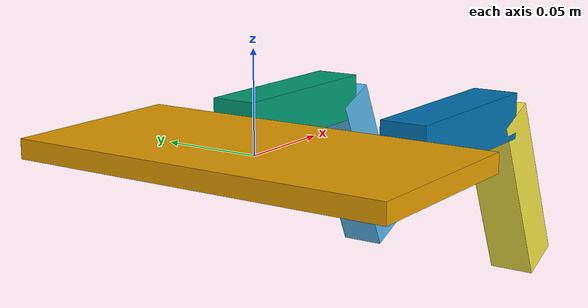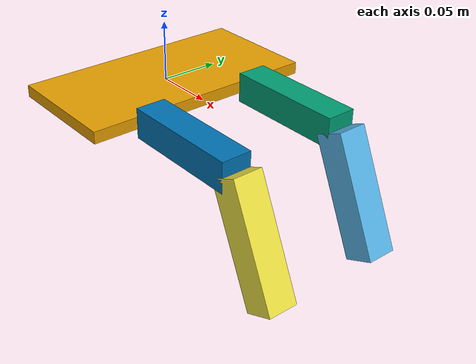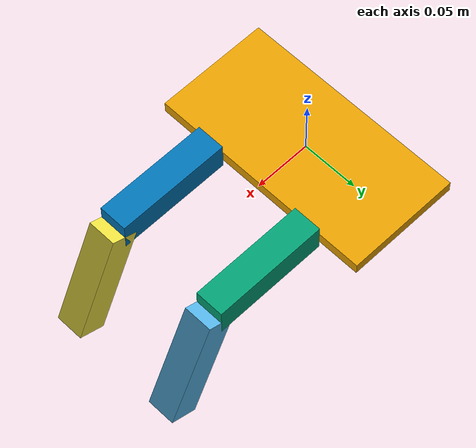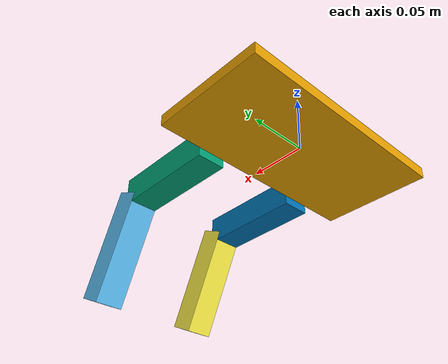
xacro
<?xml version="1.0"?>
<robot xmlns:xacro="http://www.ros.org/wiki/xacro" name="arm">

    <xacro:property name="arm_len" value="0.1" />
    <xacro:property name="body_len" value="0.2" />

    <xacro:macro name="arm" params="side up_or_low f_or_b offset">
        <link name="${f_or_b}_${side}_${up_or_low}_arm">
            <visual>
                <geometry>
                    <box size="${arm_len} ${arm_len / 4} ${arm_len / 4}"/>
                </geometry>
                <origin xyz="${offset}"/>
            </visual>
            <collision>
                <geometry>
                    <box size="${arm_len} ${arm_len / 4} ${arm_len / 4}"/>
                </geometry>
                <origin xyz="${offset}"/>
            </collision>
        </link>
    </xacro:macro>

    <xacro:macro name="limb" params="side f_or_b offset">
        <joint name="${f_or_b}_${side}_shoulder" type="revolute">
                <parent link="base_link"/>
                <child link="${f_or_b}_${side}_upper_arm"/>
                <limit lower="-.8" upper=".8" effort="0.0" velocity="0.0"/>
                <origin xyz = ".05 ${offset * (.05)} 0"/>
                <axis xyz="0 0 1"/>
            </joint>

        <joint name="${f_or_b}_${side}_elbow_joint" type="revolute">
            <parent link="${f_or_b}_${side}_upper_arm"/>
            <child link="${f_or_b}_${side}_lower_arm"/>
            <limit lower="1.1" upper="1.2" effort="0.0" velocity="0.0"/>
            <origin xyz = "0.1 0 0"/>
            <axis xyz="0.0 1 0.0"/>
        </joint>
    </xacro:macro>

    <link name="base_link">
        <visual>
            <geometry>
                <box size="${body_len} ${body_len/2} .01"/>
            </geometry>
            <origin rpy="0 0 ${3.14/2}"/>
        </visual>
        <collision>
            <geometry>
                <box size="${body_len} ${body_len/2} .01"/>
            </geometry>
            <origin rpy="0 0 ${3.14/2}"/>
        </collision>
    </link>

    <xacro:arm side="right" up_or_low="lower" f_or_b="front" offset=".05 0 0" />

    <xacro:arm side="right" up_or_low="upper" f_or_b="front" offset=".05 0 0"/>

    <xacro:limb side="right" f_or_b="front" offset="1"/>

    <xacro:arm side="right" up_or_low="lower" f_or_b="back" offset=".05 0 0" />

    <xacro:arm side="right" up_or_low="upper" f_or_b="back" offset=".05 0 0"/>

    <xacro:limb side="right" f_or_b="back" offset="-1"/>

</robot>
